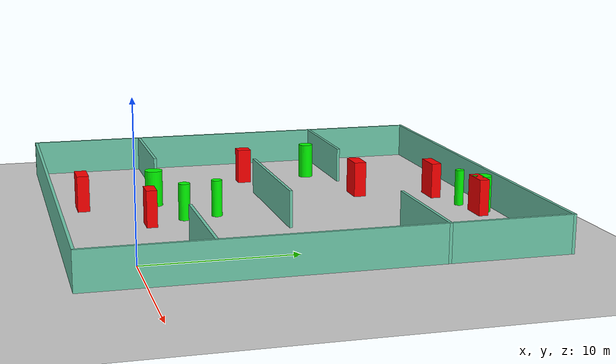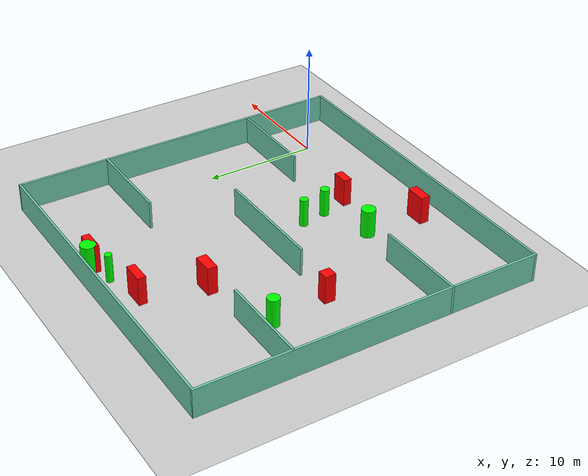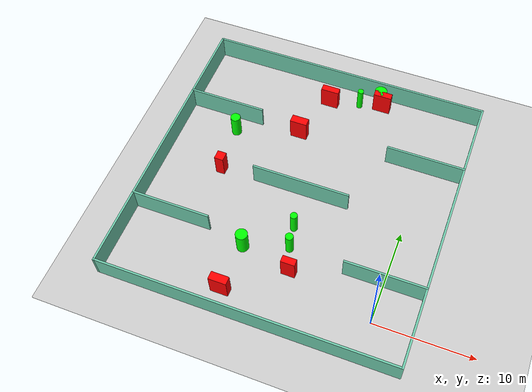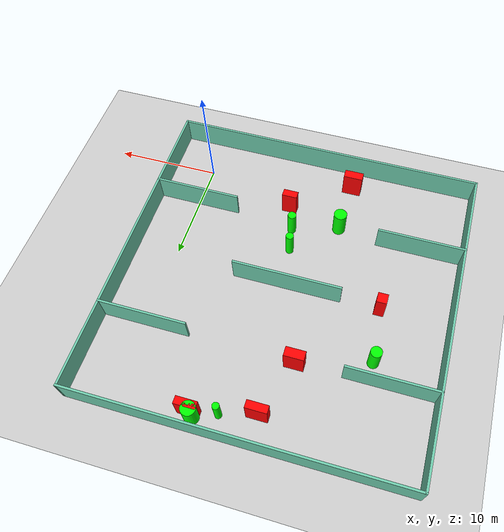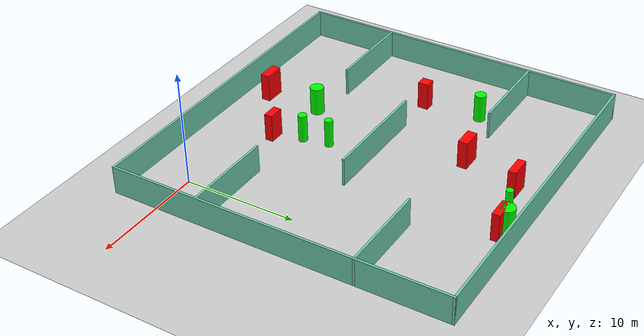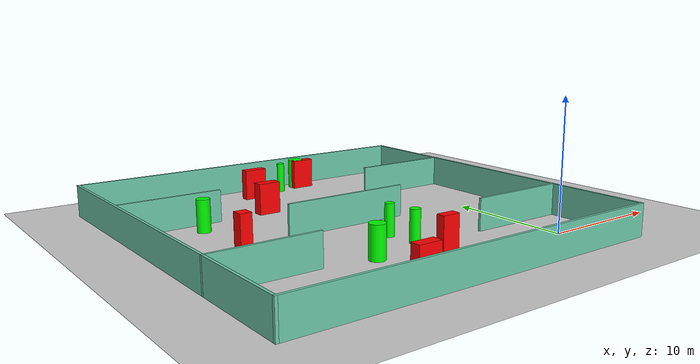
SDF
<sdf version="1.7">
 <world name="default">
  <light name="sun" type="directional">
   <pose>0 0 10 0 -0 0</pose>
   <diffuse>0.8 0.8 0.8 1</diffuse>
   <specular>0.2 0.2 0.2 1</specular>
   <attenuation>
    <range>1000</range>
    <constant>0.9</constant>
    <linear>0.01</linear>
    <quadratic>0.001</quadratic>
   </attenuation>
   <direction>-0.5 0.1 -0.9</direction>
   <spot><inner_angle>0</inner_angle><outer_angle>0</outer_angle><falloff>0</falloff></spot>
  </light>
  <model name="ground_plane">
   <static>1</static>
   <link name="link">
    <collision name="collision">
     <geometry><plane><normal>0 0 1</normal><size>100 100</size></plane></geometry>
     <surface>
      <contact><collide_bitmask>65535</collide_bitmask></contact>
      <friction><ode><mu>100</mu><mu2>50</mu2></ode></friction>
     </surface>
    </collision>
    <visual name="visual">
     <cast_shadows>0</cast_shadows>
     <geometry><plane><normal>0 0 1</normal><size>100 100</size></plane></geometry>
     <material>
      <script><uri>file://media/materials/scripts/gazebo.material</uri><name>Gazebo/Grey</name></script>
     </material>
    </visual>
   </link>
  </model>
  <gravity>0 0 -9.8</gravity>
  <magnetic_field>6e-06 2.3e-05 -4.2e-05</magnetic_field>
  <atmosphere type="adiabatic"/>
  <physics type="ode">
   <max_step_size>0.001</max_step_size>
   <real_time_factor>1</real_time_factor>
   <real_time_update_rate>1000</real_time_update_rate>
  </physics>
  <scene><ambient>0.4 0.4 0.4 1</ambient><background>0.7 0.7 0.7 1</background><shadows>1</shadows></scene>
  <spherical_coordinates>
   <surface_model>EARTH_WGS84</surface_model>
   <latitude_deg>0</latitude_deg>
   <longitude_deg>0</longitude_deg>
   <elevation>0</elevation>
   <heading_deg>0</heading_deg>
  </spherical_coordinates>
  <model name="my_base_walls">
   <link name="Wall_10">
    <collision name="Wall_10_Collision">
     <geometry><box><size>8.2 0.2 2.5</size></box></geometry>
     <pose>0 0 1.25 0 -0 0</pose>
    </collision>
    <visual name="Wall_10_Visual">
     <pose>0 0 1.25 0 -0 0</pose>
     <geometry><box><size>8.2 0.2 2.5</size></box></geometry>
     <material>
      <script><uri>file://media/materials/scripts/gazebo.material</uri><name>Gazebo/Grey</name></script>
      <ambient>0.435294 0.796078 0.67451 1</ambient>
     </material>
     <meta><layer>0</layer></meta>
    </visual>
    <pose>-11 -7 0 0 -0 0</pose>
   </link>
   <link name="Wall_12">
    <collision name="Wall_12_Collision">
     <geometry><box><size>8.2 0.2 2.5</size></box></geometry>
     <pose>0 0 1.25 0 -0 0</pose>
    </collision>
    <visual name="Wall_12_Visual">
     <pose>0 0 1.25 0 -0 0</pose>
     <geometry><box><size>8.2 0.2 2.5</size></box></geometry>
     <material>
      <script><uri>file://media/materials/scripts/gazebo.material</uri><name>Gazebo/Grey</name></script>
      <ambient>0.435294 0.796078 0.67451 1</ambient>
     </material>
     <meta><layer>0</layer></meta>
    </visual>
    <pose>-11 7 0 0 -0 0</pose>
   </link>
   <link name="Wall_14">
    <collision name="Wall_14_Collision">
     <geometry><box><size>8.2 0.2 2.5</size></box></geometry>
     <pose>0 0 1.25 0 -0 0</pose>
    </collision>
    <visual name="Wall_14_Visual">
     <pose>0 0 1.25 0 -0 0</pose>
     <geometry><box><size>8.2 0.2 2.5</size></box></geometry>
     <material>
      <script><uri>file://media/materials/scripts/gazebo.material</uri><name>Gazebo/Grey</name></script>
      <ambient>0.435294 0.796078 0.67451 1</ambient>
     </material>
     <meta><layer>0</layer></meta>
    </visual>
    <pose>11 7 0 0 -0 3.14159</pose>
   </link>
   <link name="Wall_16">
    <collision name="Wall_16_Collision">
     <geometry><box><size>10.2 0.2 2.5</size></box></geometry>
     <pose>0 0 1.25 0 -0 0</pose>
    </collision>
    <visual name="Wall_16_Visual">
     <pose>0 0 1.25 0 -0 0</pose>
     <geometry><box><size>10.2 0.2 2.5</size></box></geometry>
     <material>
      <script><uri>file://media/materials/scripts/gazebo.material</uri><name>Gazebo/Grey</name></script>
      <ambient>0.435294 0.796078 0.67451 1</ambient>
     </material>
     <meta><layer>0</layer></meta>
    </visual>
    <pose>0 0 0 0 -0 3.14159</pose>
   </link>
   <link name="Wall_2">
    <collision name="Wall_2_Collision">
     <geometry><box><size>30.2 0.2 2.5</size></box></geometry>
     <pose>0 0 1.25 0 -0 0</pose>
    </collision>
    <visual name="Wall_2_Visual">
     <pose>0 0 1.25 0 -0 0</pose>
     <geometry><box><size>30.2 0.2 2.5</size></box></geometry>
     <material>
      <script><uri>file://media/materials/scripts/gazebo.material</uri><name>Gazebo/Grey</name></script>
      <ambient>0.435294 0.796078 0.67451 1</ambient>
     </material>
     <meta><layer>0</layer></meta>
    </visual>
    <pose>0 -15 0 0 -0 3.14159</pose>
   </link>
   <link name="Wall_3">
    <collision name="Wall_3_Collision">
     <geometry><box><size>30.2 0.2 2.5</size></box></geometry>
     <pose>0 0 1.25 0 -0 0</pose>
    </collision>
    <visual name="Wall_3_Visual">
     <pose>0 0 1.25 0 -0 0</pose>
     <geometry><box><size>30.2 0.2 2.5</size></box></geometry>
     <material>
      <script><uri>file://media/materials/scripts/gazebo.material</uri><name>Gazebo/Grey</name></script>
      <ambient>0.435294 0.796078 0.67451 1</ambient>
     </material>
     <meta><layer>0</layer></meta>
    </visual>
    <pose>-15 0 0 0 -0 1.5708</pose>
   </link>
   <link name="Wall_4">
    <collision name="Wall_4_Collision">
     <geometry><box><size>30.2 0.2 2.5</size></box></geometry>
     <pose>0 0 1.25 0 -0 0</pose>
    </collision>
    <visual name="Wall_4_Visual">
     <pose>0 0 1.25 0 -0 0</pose>
     <geometry><box><size>30.2 0.2 2.5</size></box></geometry>
     <material>
      <script><uri>file://media/materials/scripts/gazebo.material</uri><name>Gazebo/Grey</name></script>
      <ambient>0.435294 0.796078 0.67451 1</ambient>
     </material>
     <meta><layer>0</layer></meta>
    </visual>
    <pose>0 15 0 0 -0 0</pose>
   </link>
   <link name="Wall_6">
    <collision name="Wall_6_Collision">
     <geometry><box><size>30.2 0.2 2.5</size></box></geometry>
     <pose>0 0 1.25 0 -0 0</pose>
    </collision>
    <visual name="Wall_6_Visual">
     <pose>0 0 1.25 0 -0 0</pose>
     <geometry><box><size>30.2 0.2 2.5</size></box></geometry>
     <material>
      <script><uri>file://media/materials/scripts/gazebo.material</uri><name>Gazebo/Grey</name></script>
      <ambient>0.435294 0.796078 0.67451 1</ambient>
     </material>
     <meta><layer>0</layer></meta>
    </visual>
    <pose>15 0 0 0 -0 1.5708</pose>
   </link>
   <link name="Wall_8">
    <collision name="Wall_8_Collision">
     <geometry><box><size>8.2 0.2 2.5</size></box></geometry>
     <pose>0 0 1.25 0 -0 0</pose>
    </collision>
    <visual name="Wall_8_Visual">
     <pose>0 0 1.25 0 -0 0</pose>
     <geometry><box><size>8.2 0.2 2.5</size></box></geometry>
     <material>
      <script><uri>file://media/materials/scripts/gazebo.material</uri><name>Gazebo/Grey</name></script>
      <ambient>0.435294 0.796078 0.67451 1</ambient>
     </material>
     <meta><layer>0</layer></meta>
    </visual>
    <pose>11 -7 0 0 -0 3.14159</pose>
   </link>
   <static>1</static>
   <pose>-11 11 0 0 -0 0</pose>
  </model>
  <model name="cylinder1">
   <static>1</static>
   <link name="link">
    <inertial>
     <mass>1</mass>
     <inertia><ixx>0.5</ixx><ixy>0</ixy><ixz>0</ixz><iyy>0.5</iyy><iyz>0</iyz><izz>1</izz></inertia>
    </inertial>
    <collision name="collision">
     <geometry><cylinder><radius>0.6533928863106615</radius><length>2.5</length></cylinder></geometry>
    </collision>
    <visual name="visual">
     <geometry><cylinder><radius>0.6533928863106615</radius><length>2.5</length></cylinder></geometry>
     <material>
      <ambient>0 1 0 1</ambient>
      <diffuse>0 1 0 1</diffuse>
      <specular>0.1 0.1 0.1 1</specular>
      <emissive>0 0 0 0</emissive>
     </material>
    </visual>
   </link>
   <pose>-6.886828401772263 24.859109077151782 1.25 0 0 0</pose>
  </model>
  <model name="cylinder2">
   <static>1</static>
   <link name="link">
    <inertial>
     <mass>1</mass>
     <inertia><ixx>0.5</ixx><ixy>0</ixy><ixz>0</ixz><iyy>0.5</iyy><iyz>0</iyz><izz>1</izz></inertia>
    </inertial>
    <collision name="collision">
     <geometry><cylinder><radius>0.5169697106263248</radius><length>2.5</length></cylinder></geometry>
    </collision>
    <visual name="visual">
     <geometry><cylinder><radius>0.5169697106263248</radius><length>2.5</length></cylinder></geometry>
     <material>
      <ambient>0 1 0 1</ambient>
      <diffuse>0 1 0 1</diffuse>
      <specular>0.1 0.1 0.1 1</specular>
      <emissive>0 0 0 0</emissive>
     </material>
    </visual>
   </link>
   <pose>-20.208613327302483 16.08775559696445 1.25 0 0 0</pose>
  </model>
  <model name="cylinder3">
   <static>1</static>
   <link name="link">
    <inertial>
     <mass>1</mass>
     <inertia><ixx>0.5</ixx><ixy>0</ixy><ixz>0</ixz><iyy>0.5</iyy><iyz>0</iyz><izz>1</izz></inertia>
    </inertial>
    <collision name="collision">
     <geometry><cylinder><radius>0.6112179620667564</radius><length>2.5</length></cylinder></geometry>
    </collision>
    <visual name="visual">
     <geometry><cylinder><radius>0.6112179620667564</radius><length>2.5</length></cylinder></geometry>
     <material>
      <ambient>0 1 0 1</ambient>
      <diffuse>0 1 0 1</diffuse>
      <specular>0.1 0.1 0.1 1</specular>
      <emissive>0 0 0 0</emissive>
     </material>
    </visual>
   </link>
   <pose>-14.117615974578184 3.2760018746655186 1.25 0 0 0</pose>
  </model>
  <model name="cylinder4">
   <static>1</static>
   <link name="link">
    <inertial>
     <mass>1</mass>
     <inertia><ixx>0.5</ixx><ixy>0</ixy><ixz>0</ixz><iyy>0.5</iyy><iyz>0</iyz><izz>1</izz></inertia>
    </inertial>
    <collision name="collision">
     <geometry><cylinder><radius>0.3980420362658422</radius><length>2.5</length></cylinder></geometry>
    </collision>
    <visual name="visual">
     <geometry><cylinder><radius>0.3980420362658422</radius><length>2.5</length></cylinder></geometry>
     <material>
      <ambient>0 1 0 1</ambient>
      <diffuse>0 1 0 1</diffuse>
      <specular>0.1 0.1 0.1 1</specular>
      <emissive>0 0 0 0</emissive>
     </material>
    </visual>
   </link>
   <pose>-9.744059701046705 4.641462813596721 1.25 0 0 0</pose>
  </model>
  <model name="cylinder5">
   <static>1</static>
   <link name="link">
    <inertial>
     <mass>1</mass>
     <inertia><ixx>0.5</ixx><ixy>0</ixy><ixz>0</ixz><iyy>0.5</iyy><iyz>0</iyz><izz>1</izz></inertia>
    </inertial>
    <collision name="collision">
     <geometry><cylinder><radius>0.36505229311221443</radius><length>2.5</length></cylinder></geometry>
    </collision>
    <visual name="visual">
     <geometry><cylinder><radius>0.36505229311221443</radius><length>2.5</length></cylinder></geometry>
     <material>
      <ambient>0 1 0 1</ambient>
      <diffuse>0 1 0 1</diffuse>
      <specular>0.1 0.1 0.1 1</specular>
      <emissive>0 0 0 0</emissive>
     </material>
    </visual>
   </link>
   <pose>-10.170851317843887 6.95745020395729 1.25 0 0 0</pose>
  </model>
  <model name="cylinder6">
   <static>1</static>
   <link name="link">
    <inertial>
     <mass>1</mass>
     <inertia><ixx>0.5</ixx><ixy>0</ixy><ixz>0</ixz><iyy>0.5</iyy><iyz>0</iyz><izz>1</izz></inertia>
    </inertial>
    <collision name="collision">
     <geometry><cylinder><radius>0.31141000409141795</radius><length>2.5</length></cylinder></geometry>
    </collision>
    <visual name="visual">
     <geometry><cylinder><radius>0.31141000409141795</radius><length>2.5</length></cylinder></geometry>
     <material>
      <ambient>0 1 0 1</ambient>
      <diffuse>0 1 0 1</diffuse>
      <specular>0.1 0.1 0.1 1</specular>
      <emissive>0 0 0 0</emissive>
     </material>
    </visual>
   </link>
   <pose>-8.92930994207311 24.08264022639007 1.25 0 0 0</pose>
  </model>
  <model name="box1">
   <static>1</static>
   <link name="link">
    <inertial>
     <mass>1</mass>
     <inertia><ixx>0.083</ixx><ixy>0</ixy><ixz>0</ixz><iyy>0.083</iyy><iyz>0</iyz><izz>0.083</izz></inertia>
    </inertial>
    <collision name="collision">
     <geometry><box><size>1.7851801144657657 0.8594118176327379 2.5</size></box></geometry>
    </collision>
    <visual name="visual">
     <geometry><box><size>1.7851801144657657 0.8594118176327379 2.5</size></box></geometry>
     <material>
      <ambient>1 0 0 1</ambient>
      <diffuse>1 0 0 1</diffuse>
      <specular>0.1 0.1 0.1 1</specular>
      <emissive>0 0 0 0</emissive>
     </material>
    </visual>
    <sensor name="my_contact" type="contact">
     <contact><collision>box_collision</collision><topic>__default_topic__</topic></contact>
    </sensor>
   </link>
   <pose>-13.741189975391235 18.08234486339826 1.25 0 0 0</pose>
  </model>
  <model name="box2">
   <static>1</static>
   <link name="link">
    <inertial>
     <mass>1</mass>
     <inertia><ixx>0.083</ixx><ixy>0</ixy><ixz>0</ixz><iyy>0.083</iyy><iyz>0</iyz><izz>0.083</izz></inertia>
    </inertial>
    <collision name="collision">
     <geometry><box><size>1.8861070813506418 0.6851120927203498 2.5</size></box></geometry>
    </collision>
    <visual name="visual">
     <geometry><box><size>1.8861070813506418 0.6851120927203498 2.5</size></box></geometry>
     <material>
      <ambient>1 0 0 1</ambient>
      <diffuse>1 0 0 1</diffuse>
      <specular>0.1 0.1 0.1 1</specular>
      <emissive>0 0 0 0</emissive>
     </material>
    </visual>
    <sensor name="my_contact" type="contact">
     <contact><collision>box_collision</collision><topic>__default_topic__</topic></contact>
    </sensor>
   </link>
   <pose>-6.5263810950053 24.487835754713277 1.25 0 0 0</pose>
  </model>
  <model name="box3">
   <static>1</static>
   <link name="link">
    <inertial>
     <mass>1</mass>
     <inertia><ixx>0.083</ixx><ixy>0</ixy><ixz>0</ixz><iyy>0.083</iyy><iyz>0</iyz><izz>0.083</izz></inertia>
    </inertial>
    <collision name="collision">
     <geometry><box><size>1.8149007215659239 0.825086263759017 2.5</size></box></geometry>
    </collision>
    <visual name="visual">
     <geometry><box><size>1.8149007215659239 0.825086263759017 2.5</size></box></geometry>
     <material>
      <ambient>1 0 0 1</ambient>
      <diffuse>1 0 0 1</diffuse>
      <specular>0.1 0.1 0.1 1</specular>
      <emissive>0 0 0 0</emissive>
     </material>
    </visual>
    <sensor name="my_contact" type="contact">
     <contact><collision>box_collision</collision><topic>__default_topic__</topic></contact>
    </sensor>
   </link>
   <pose>-14.283706132802916 -1.709709794692928 1.25 0 0 0</pose>
  </model>
  <model name="box4">
   <static>1</static>
   <link name="link">
    <inertial>
     <mass>1</mass>
     <inertia><ixx>0.083</ixx><ixy>0</ixy><ixz>0</ixz><iyy>0.083</iyy><iyz>0</iyz><izz>0.083</izz></inertia>
    </inertial>
    <collision name="collision">
     <geometry><box><size>0.9337112951567695 0.9575932065794669 2.5</size></box></geometry>
    </collision>
    <visual name="visual">
     <geometry><box><size>0.9337112951567695 0.9575932065794669 2.5</size></box></geometry>
     <material>
      <ambient>1 0 0 1</ambient>
      <diffuse>1 0 0 1</diffuse>
      <specular>0.1 0.1 0.1 1</specular>
      <emissive>0 0 0 0</emissive>
     </material>
    </visual>
    <sensor name="my_contact" type="contact">
     <contact><collision>box_collision</collision><topic>__default_topic__</topic></contact>
    </sensor>
   </link>
   <pose>-19.700945802937106 10.995687867636263 1.25 0 0 0</pose>
  </model>
  <model name="box5">
   <static>1</static>
   <link name="link">
    <inertial>
     <mass>1</mass>
     <inertia><ixx>0.083</ixx><ixy>0</ixy><ixz>0</ixz><iyy>0.083</iyy><iyz>0</iyz><izz>0.083</izz></inertia>
    </inertial>
    <collision name="collision">
     <geometry><box><size>1.8997364756397115 0.7023799720070649 2.5</size></box></geometry>
    </collision>
    <visual name="visual">
     <geometry><box><size>1.8997364756397115 0.7023799720070649 2.5</size></box></geometry>
     <material>
      <ambient>1 0 0 1</ambient>
      <diffuse>1 0 0 1</diffuse>
      <specular>0.1 0.1 0.1 1</specular>
      <emissive>0 0 0 0</emissive>
     </material>
    </visual>
    <sensor name="my_contact" type="contact">
     <contact><collision>box_collision</collision><topic>__default_topic__</topic></contact>
    </sensor>
   </link>
   <pose>-12.07282829958599 23.242857814770105 1.25 0 0 0</pose>
  </model>
  <model name="box6">
   <static>1</static>
   <link name="link">
    <inertial>
     <mass>1</mass>
     <inertia><ixx>0.083</ixx><ixy>0</ixy><ixz>0</ixz><iyy>0.083</iyy><iyz>0</iyz><izz>0.083</izz></inertia>
    </inertial>
    <collision name="collision">
     <geometry><box><size>1.424842658098725 0.7190175267039488 2.5</size></box></geometry>
    </collision>
    <visual name="visual">
     <geometry><box><size>1.424842658098725 0.7190175267039488 2.5</size></box></geometry>
     <material>
      <ambient>1 0 0 1</ambient>
      <diffuse>1 0 0 1</diffuse>
      <specular>0.1 0.1 0.1 1</specular>
      <emissive>0 0 0 0</emissive>
     </material>
    </visual>
    <sensor name="my_contact" type="contact">
     <contact><collision>box_collision</collision><topic>__default_topic__</topic></contact>
    </sensor>
   </link>
   <pose>-8.888201586672281 2.2189636013127165 1.25 0 0 0</pose>
  </model>
 </world>
</sdf>
